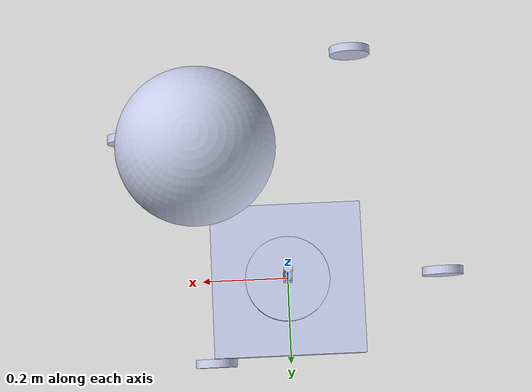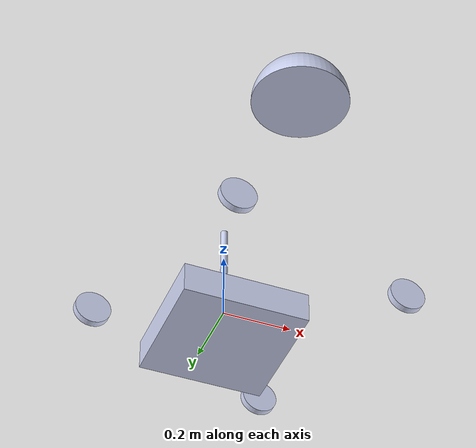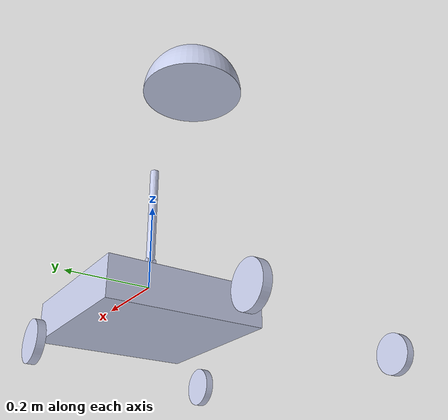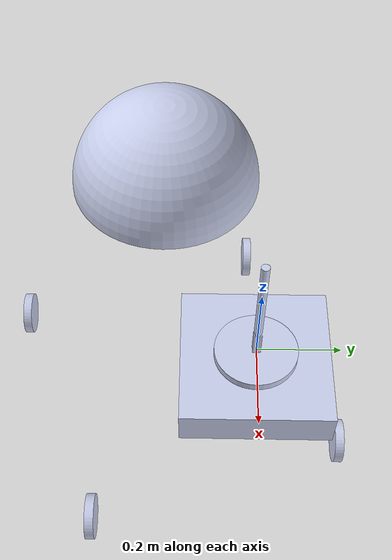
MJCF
<mujoco model="bb8_car_thisone">
  <compiler angle="radian"/>

  <asset>
    <mesh name="base_link" content_type="model/stl" file="base_link.STL"/>
    <mesh name="lazy_susan" content_type="model/stl" file="lazy_susan.STL"/>
    <mesh name="arm" content_type="model/stl" file="arm.STL"/>
    <mesh name="head" content_type="model/stl" file="head.STL"/>
    <mesh name="w1" content_type="model/stl" file="w1.STL"/>
    <mesh name="w2" content_type="model/stl" file="w2.STL"/>
    <mesh name="w3" content_type="model/stl" file="w3.STL"/>
    <mesh name="w4" content_type="model/stl" file="w4.STL"/>
  </asset>

  <worldbody>
    <geom type="mesh" rgba="0.79216 0.81961 0.93333 1" mesh="base_link"/>
    <body name="lazy_susan">
      <inertial pos="0 0 -0.0081795" quat="0.5 0.5 -0.5 0.5" mass="0.65546" diaginertia="0.0031434 0.0015976 0.0015976"/>
      <joint name="lazy_susan" pos="0 0 0" axis="0 0 -1"/>
      <geom type="mesh" rgba="0.79216 0.81961 0.93333 1" mesh="lazy_susan"/>
      <body name="arm" pos="0 -0.01 0.06" quat="1.34924e-11 -3.67321e-06 1 -3.67321e-06">
        <inertial pos="1.2577e-10 0.01 -0.12424" quat="0.711902 0 0 0.702278" mass="0.072732" diaginertia="0.00032679 0.00032678 3.6454e-06"/>
        <joint name="arm" pos="0 0 0" axis="0 -1 0"/>
        <geom type="mesh" rgba="0.79216 0.81961 0.93333 1" mesh="arm"/>
        <body name="head" pos="0 0.01 -0.24" quat="-1.66326e-07 0.0452808 -0.998974 3.66944e-06">
          <inertial pos="0 0 0.0553125" quat="0.5 0.5 -0.5 0.5" mass="6.72101" diaginertia="0.0584896 0.0379269 0.0379269"/>
          <joint name="head" pos="0 0 0" axis="0 0 -1"/>
          <geom type="mesh" rgba="0.792157 0.819608 0.933333 1" mesh="head"/>
        </body>
      </body>
    </body>
    <body name="w1" pos="0 -0.2 -0.137" quat="1.34924e-11 -3.67321e-06 1 -3.67321e-06">
      <inertial pos="0 0.01 0" quat="0.707107 0 0 0.707107" mass="0.15708" diaginertia="0.00019635 0.00010341 0.00010341"/>
      <joint name="w1" pos="0 0 0" axis="0 1 0"/>
      <geom type="mesh" rgba="0.79216 0.81961 0.93333 1" mesh="w1"/>
    </body>
    <body name="w2" pos="-0.2 0 -0.137" quat="-2.59734e-06 -0.707105 -0.707108 -2.59735e-06">
      <inertial pos="0 0.01 0" quat="0.707107 0 0 0.707107" mass="0.15708" diaginertia="0.00019635 0.00010341 0.00010341"/>
      <joint name="w2" pos="0 0 0" axis="0 1 0"/>
      <geom type="mesh" rgba="0.79216 0.81961 0.93333 1" mesh="w2"/>
    </body>
    <body name="w3" pos="0.2 0 -0.137" quat="-2.59734e-06 0.707105 -0.707108 2.59735e-06">
      <inertial pos="0 0.01 0" quat="0.707107 0 0 0.707107" mass="0.15708" diaginertia="0.00019635 0.00010341 0.00010341"/>
      <joint name="w3" pos="0 0 0" axis="0 1 0"/>
      <geom type="mesh" rgba="0.79216 0.81961 0.93333 1" mesh="w3"/>
    </body>
    <body name="w4" pos="0 0.2 -0.137" quat="-3.67321e-06 -1 0 0">
      <inertial pos="0 0.01 0" quat="0.707107 0 0 0.707107" mass="0.15708" diaginertia="0.00019635 0.00010341 0.00010341"/>
      <joint name="w4" pos="0 0 0" axis="0 1 0"/>
      <geom type="mesh" rgba="0.79216 0.81961 0.93333 1" mesh="w4"/>
    </body>
  </worldbody>
</mujoco>
